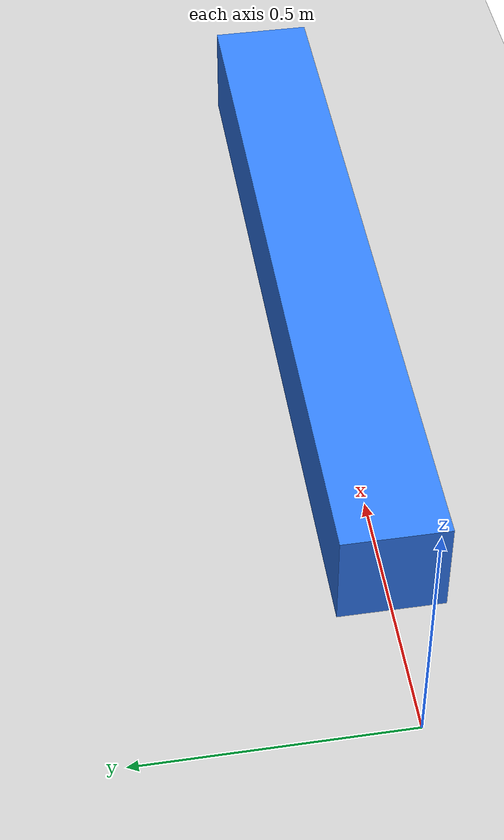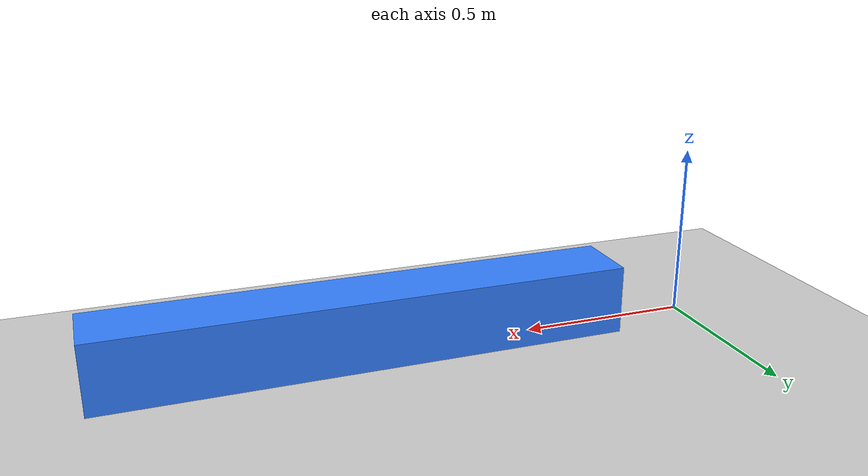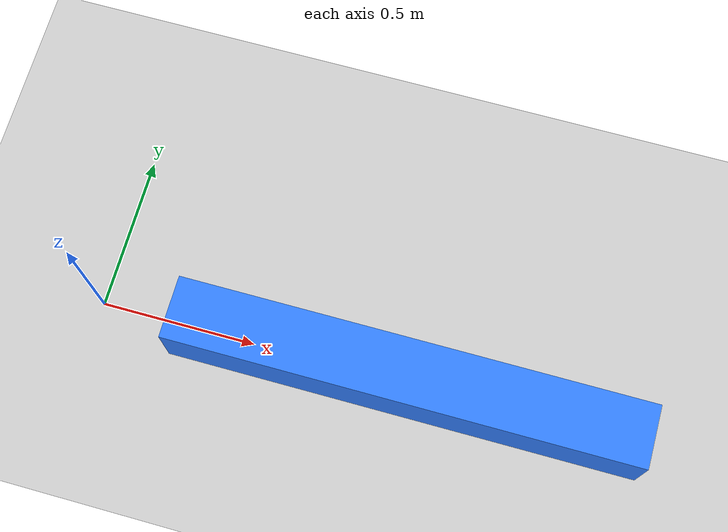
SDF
<?xml version="1.0" encoding="UTF-8"?>
<sdf version="1.9">
  <world name="cable_world">

    <!-- ========== Standard physics ========== -->
    <physics type="ode">
      <max_step_size>0.004</max_step_size>
      <real_time_factor>1.0</real_time_factor>
      <real_time_update_rate>250</real_time_update_rate>
    </physics>
    <gravity>0 0 -9.8</gravity>
    <magnetic_field>6e-06 2.3e-05 -4.2e-05</magnetic_field>
    <spherical_coordinates>
      <surface_model>EARTH_WGS84</surface_model>
      <world_frame_orientation>ENU</world_frame_orientation>
      <latitude_deg>47.397971057728974</latitude_deg>
      <longitude_deg> 8.546163739800146</longitude_deg>
      <elevation>0</elevation>
    </spherical_coordinates>

    <!-- ========== Required Gazebo systems ========== -->
    <plugin filename="gz-sim-physics-system"
            name="gz::sim::systems::Physics"/>
    <plugin filename="gz-sim-user-commands-system"
            name="gz::sim::systems::UserCommands"/>
    <plugin filename="gz-sim-scene-broadcaster-system"
            name="gz::sim::systems::SceneBroadcaster"/>
    <plugin filename="gz-sim-sensors-system"
            name="gz::sim::systems::Sensors">
      <render_engine>ogre2</render_engine>
    </plugin>
    <plugin filename="gz-sim-imu-system"
            name="gz::sim::systems::Imu"/>
    <plugin filename="gz-sim-air-pressure-system"
            name="gz::sim::systems::AirPressure"/>
    <plugin filename="gz-sim-magnetometer-system"
            name="gz::sim::systems::Magnetometer"/>
    <plugin filename="gz-sim-navsat-system"
            name="gz::sim::systems::NavSat"/>

    <!-- ========== Cable plugin ========== -->
    <plugin filename="libcable_plugin.so" name="CablePlugin">
      <model0>x500_0</model0>
      <link0>base_link</link0>
      <model1>payload</model1>
      <link1>tip0_link</link1>
      <rest_length>2.5</rest_length>
      <stiffness>50.0</stiffness>
      <damping>40.0</damping>
    </plugin>

    <plugin filename="libcable_plugin.so" name="CablePlugin">
      <model0>x500_1</model0>
      <link0>base_link</link0>
      <model1>payload</model1>
      <link1>tip1_link</link1>
      <rest_length>2.5</rest_length>
      <stiffness>50.0</stiffness>
      <damping>40.0</damping>
    </plugin>

    <!-- ========== Payload ==========-->
    <model name="payload">
      <pose>1 0 0.1 0 0 0</pose>
      <link name="base_link">
        <inertial>
          <mass>1.5</mass>
        </inertial>

        <collision name="collision">
          <geometry>
            <box><size>1.5 0.2 0.2</size></box>
          </geometry>
        </collision>

        <visual name="visual">
          <geometry>
            <box><size>1.5 0.2 0.2</size></box>
          </geometry>
          <material>
            <ambient>0.2 0.5 1.0 1</ambient>
            <diffuse>0.2 0.5 1.0 1</diffuse>
          </material>
        </visual>
      </link>

      <!-- Tip 0 -->

      <link name="tip0_link">
        <pose>-1 0 0 0 0 0</pose>
        <inertial>
          <mass>0.02</mass>
          <inertia>
            <ixx>0.0001</ixx>
            <iyy>0.0001</iyy>
            <izz>0.0001</izz>
            <ixy>0</ixy>
            <ixz>0</ixz>
            <iyz>0</iyz>
          </inertia>
        </inertial>

        <collision name="collision">
          <geometry>
            <sphere><radius>0.01</radius></sphere>
          </geometry>
        </collision>
      </link>

      <joint name="tip0_joint" type="fixed">
        <parent>base_link</parent>
        <child>tip0_link</child>
      </joint>

      <!-- Tip 1 -->

      <link name="tip1_link">
        <pose>1 0 0 0 0 0</pose>
        <inertial>
          <mass>0.02</mass>
          <inertia>
            <ixx>0.0001</ixx>
            <iyy>0.0001</iyy>
            <izz>0.0001</izz>
            <ixy>0</ixy>
            <ixz>0</ixz>
            <iyz>0</iyz>
          </inertia>
        </inertial>

        <collision name="collision">
          <geometry>
            <sphere><radius>0.01</radius></sphere>
          </geometry>
        </collision>
      </link>

      <joint name="tip1_joint" type="fixed">
        <parent>base_link</parent>
        <child>tip1_link</child>
      </joint>
    </model>

    <!-- ========== Lighting ========== -->
    <light type="directional" name="sun">
      <cast_shadows>true</cast_shadows>
      <pose>0 0 10 0 0 0</pose>
      <diffuse>0.8 0.8 0.8 1</diffuse>
      <specular>0.2 0.2 0.2 1</specular>
      <direction>-0.5 0.1 -0.9</direction>
    </light>

    <!-- ========== Ground plane ========== -->
    <model name="ground_plane">
      <static>true</static>
      <link name="link">
        <collision name="collision">
          <geometry><plane><normal>0 0 1</normal></plane></geometry>
        </collision>
        <visual name="visual">
          <geometry><plane><normal>0 0 1</normal><size>100 100</size></plane></geometry>
          <material>
            <ambient>0.8 0.8 0.8 1</ambient>
            <diffuse>0.8 0.8 0.8 1</diffuse>
          </material>
        </visual>
      </link>
    </model>

  </world>
</sdf>
